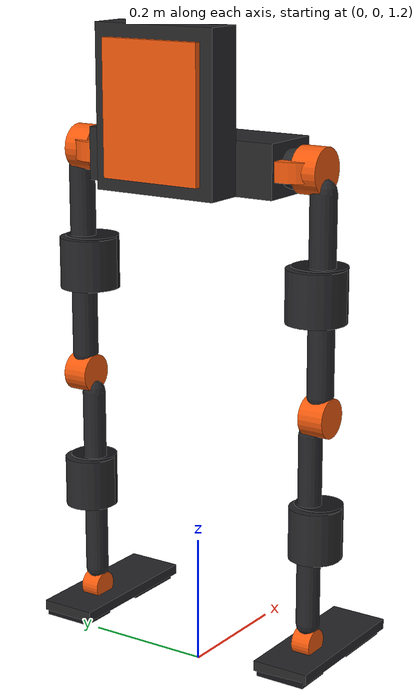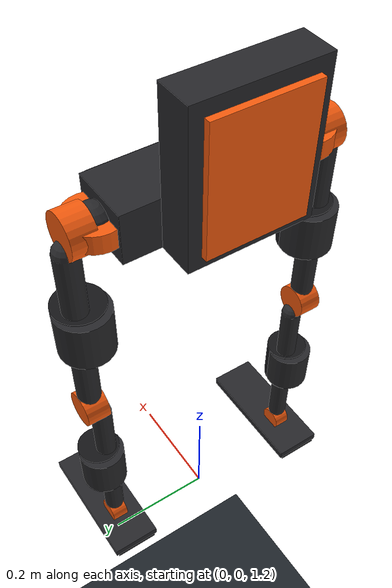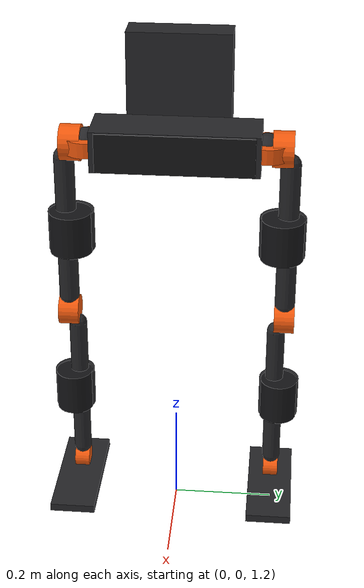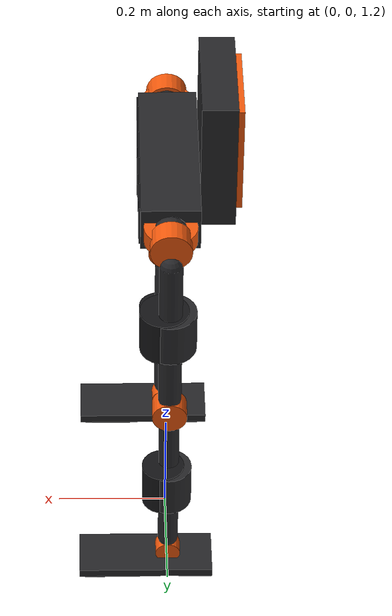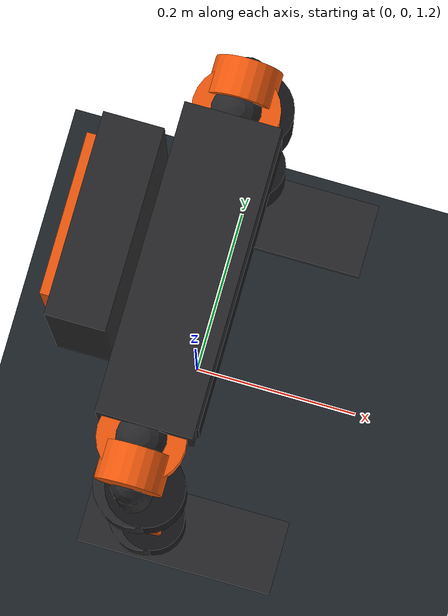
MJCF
<mujoco model="exoskeleton_scene">
  <include file="exoskeleton.xml"/>

  <option integrator="RK4" timestep="0.002" gravity="0 0 0"/>

  <!-- Setup the view and environment settings -->
  <statistic center="0 0 0.8" extent="1.5"/>

  <visual>
    <headlight diffuse="0.6 0.6 0.6" ambient="0.2 0.2 0.2" specular="0.2 0.2 0.2"/>
    <rgba haze="0.15 0.25 0.35 1"/>
    <global azimuth="140" elevation="-20"/>
  </visual>

  <!-- Skybox and Ground textures/materials -->
  <asset>
    <texture type="skybox" builtin="gradient" rgb1="0.1 0.15 0.25" rgb2="0 0 0" width="512" height="3072"/>
    <texture type="2d" name="groundplane" builtin="checker" mark="edge" rgb1="0.15 0.18 0.2" rgb2="0.08 0.1 0.12"
      markrgb="0.4 0.4 0.4" width="300" height="300"/>
    <material name="groundplane" texture="groundplane" texuniform="true" texrepeat="5 5" reflectance="0.15"/>
  </asset>

  <worldbody>
    <!-- Direct lighting -->
    <light pos="0 0 3.0" dir="0 0 -1" directional="true" castshadow="true"/>
    <light pos="1.5 1.5 3.0" dir="-0.5 -0.5 -1" directional="true" castshadow="true"/>

    <!-- Floor plane -->
    <geom name="floor" size="0 0 0.05" type="plane" material="groundplane"/>
  </worldbody>

  <!-- Toggleable Weld Constraint to hold the pelvis in mid-air -->
  <equality>
    <weld name="pelvis_weld" body1="pelvis" relpose="0 0 2.0 1 0 0 0" active="true"/>
  </equality>
</mujoco>

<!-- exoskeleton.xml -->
<mujoco model="lower_limb_exoskeleton">
  <compiler angle="radian" autolimits="true"/>

  <default>
    <default class="exoskeleton">
      <joint damping="10.0" armature="0.05" type="hinge"/>
      <geom contype="1" conaffinity="1" condim="3"/>
      <!-- Default position actuator settings -->
      <position kp="250" forcerange="-150 150"/>
    </default>
  </default>

  <!-- Sleek and modern color scheme -->
  <asset>
    <!-- Carbon fiber / dark structure -->
    <material name="carbon_fiber" rgba="0.15 0.15 0.16 1.0" specular="0.8" shininess="0.6"/>
    <!-- Anodized orange details for joints -->
    <material name="orange_anodized" rgba="0.95 0.35 0.05 1.0" specular="0.9" shininess="0.8"/>
    <!-- Matte black padding/cushion -->
    <material name="pad_matte" rgba="0.08 0.08 0.09 1.0" specular="0.1" shininess="0.1"/>
    <!-- Semi-transparent guards -->
    <material name="guard_translucent" rgba="0.2 0.6 0.9 0.4" specular="0.5" shininess="0.5"/>
  </asset>

  <worldbody>
    <!-- Pelvis / Waist Band -->
    <body name="pelvis" pos="0 0 2.0" childclass="exoskeleton">
      <freejoint name="pelvis_free"/>

      <!-- Central waist frame -->
      <geom name="pelvis_back" type="box" size="0.05 0.16 0.04" material="carbon_fiber"/>
      <!-- Back support battery pack / controller housing (aesthetic) -->
      <geom name="pelvis_pack" type="box" size="0.03 0.10 0.12" pos="-0.08 0 0.08" material="carbon_fiber"/>
      <geom name="pelvis_pack_accent" type="box" size="0.005 0.08 0.10" pos="-0.116 0 0.08" material="orange_anodized"/>

      <!-- Pelvis pads / cushions -->
      <geom name="pelvis_pad" type="box" size="0.048 0.15 0.038" pos="0.005 0 0" material="pad_matte"/>

      <!-- ==================== LEFT LEG ==================== -->
      <!-- Left Hip Mount -->
      <body name="left_hip_mount" pos="0 0.17 0">
        <geom name="left_hip_mount_geom" type="cylinder" size="0.045 0.015" quat="1 0 0 0" material="orange_anodized"/>

        <!-- Left Hip Yaw (Z-axis rotation) -->
        <body name="left_hip_yaw_link" pos="0 0 0">
          <joint name="left_hip_yaw" axis="0 0 1" range="-0.4 0.4"/>
          <geom name="left_hip_yaw_geom" type="sphere" size="0.03" material="carbon_fiber"/>

          <!-- Left Hip Roll (X-axis rotation) -->
          <body name="left_hip_roll_link" pos="0 0 0">
            <joint name="left_hip_roll" axis="1 0 0" range="-0.3 0.4"/>
            <geom name="left_hip_roll_geom" type="cylinder" size="0.025 0.03" quat="0.7071068 0.7071068 0 0" material="orange_anodized"/>

            <!-- Left Hip Pitch (Y-axis rotation, flexion/extension) -->
            <body name="left_thigh" pos="0 0.03 0">
              <joint name="left_hip_pitch" axis="0 1 0" range="-0.5 1.4"/>

              <!-- Thigh structures -->
              <geom name="left_thigh_upper" type="cylinder" size="0.035 0.02" quat="0.7071068 0.7071068 0 0" material="orange_anodized"/>
              <geom name="left_thigh_strut" type="capsule" size="0.02 0.15" pos="0 0.015 -0.18" quat="1 0 0 0" material="carbon_fiber"/>

              <!-- Thigh cuffs & pads (mounting to human leg) -->
              <geom name="left_thigh_cuff" type="cylinder" size="0.045 0.04" pos="0 0.005 -0.18" quat="1 0 0 0" material="carbon_fiber"/>
              <geom name="left_thigh_pad" type="cylinder" size="0.042 0.042" pos="0.01 0.005 -0.18" quat="1 0 0 0" material="pad_matte"/>

              <!-- Left Knee Pitch (Y-axis rotation, flexion) -->
              <body name="left_shank" pos="0 0.015 -0.36">
                <joint name="left_knee_pitch" axis="0 -1 0" range="0.0 2.1"/>

                <!-- Knee structure -->
                <geom name="left_knee_joint_geom" type="cylinder" size="0.03 0.02" quat="0.7071068 0.7071068 0 0" material="orange_anodized"/>
                <geom name="left_shank_strut" type="capsule" size="0.018 0.15" pos="0 -0.015 -0.18" quat="1 0 0 0" material="carbon_fiber"/>

                <!-- Shank cuffs & pads -->
                <geom name="left_shank_cuff" type="cylinder" size="0.04 0.04" pos="0 -0.005 -0.18" quat="1 0 0 0" material="carbon_fiber"/>
                <geom name="left_shank_pad" type="cylinder" size="0.037 0.042" pos="0.01 -0.005 -0.18" quat="1 0 0 0" material="pad_matte"/>

                <!-- Left Ankle Pitch (Y-axis rotation) -->
                <body name="left_foot" pos="0 -0.015 -0.36">
                  <joint name="left_ankle_pitch" axis="0 1 0" range="-0.6 0.5"/>

                  <!-- Ankle joint -->
                  <geom name="left_ankle_joint_geom" type="cylinder" size="0.022 0.015" quat="0.7071068 0.7071068 0 0" material="orange_anodized"/>

                  <!-- Foot plate -->
                  <geom name="left_foot_plate" type="box" size="0.12 0.045 0.008" pos="0.04 0 -0.02" material="carbon_fiber"/>
                  <!-- Heel/Toe contact sensors/geoms -->
                  <geom name="left_heel" type="box" size="0.03 0.04 0.005" pos="-0.05 0 -0.03" material="pad_matte" condim="6"/>
                  <geom name="left_toe" type="box" size="0.05 0.04 0.005" pos="0.1 0 -0.03" material="pad_matte" condim="6"/>
                </body>
              </body>
            </body>
          </body>
        </body>
      </body>

      <!-- ==================== RIGHT LEG ==================== -->
      <!-- Right Hip Mount -->
      <body name="right_hip_mount" pos="0 -0.17 0">
        <geom name="right_hip_mount_geom" type="cylinder" size="0.045 0.015" quat="1 0 0 0" material="orange_anodized"/>

        <!-- Right Hip Yaw (Z-axis rotation) -->
        <body name="right_hip_yaw_link" pos="0 0 0">
          <joint name="right_hip_yaw" axis="0 0 1" range="-0.4 0.4"/>
          <geom name="right_hip_yaw_geom" type="sphere" size="0.03" material="carbon_fiber"/>

          <!-- Right Hip Roll (X-axis rotation) -->
          <body name="right_hip_roll_link" pos="0 0 0">
            <joint name="right_hip_roll" axis="1 0 0" range="-0.4 0.3"/>
            <geom name="right_hip_roll_geom" type="cylinder" size="0.025 0.03" quat="0.7071068 0.7071068 0 0" material="orange_anodized"/>

            <!-- Right Hip Pitch (Y-axis rotation, flexion/extension) -->
            <body name="right_thigh" pos="0 -0.03 0">
              <joint name="right_hip_pitch" axis="0 1 0" range="-0.5 1.4"/>

              <!-- Thigh structures -->
              <geom name="right_thigh_upper" type="cylinder" size="0.035 0.02" quat="0.7071068 0.7071068 0 0" material="orange_anodized"/>
              <geom name="right_thigh_strut" type="capsule" size="0.02 0.15" pos="0 -0.015 -0.18" quat="1 0 0 0" material="carbon_fiber"/>

              <!-- Thigh cuffs & pads -->
              <geom name="right_thigh_cuff" type="cylinder" size="0.045 0.04" pos="0 -0.005 -0.18" quat="1 0 0 0" material="carbon_fiber"/>
              <geom name="right_thigh_pad" type="cylinder" size="0.042 0.042" pos="0.01 -0.005 -0.18" quat="1 0 0 0" material="pad_matte"/>

              <!-- Right Knee Pitch (Y-axis rotation, flexion) -->
              <body name="right_shank" pos="0 -0.015 -0.36">
                <joint name="right_knee_pitch" axis="0 -1 0" range="0.0 2.1"/>

                <!-- Knee structure -->
                <geom name="right_knee_joint_geom" type="cylinder" size="0.03 0.02" quat="0.7071068 0.7071068 0 0" material="orange_anodized"/>
                <geom name="right_shank_strut" type="capsule" size="0.018 0.15" pos="0 0.015 -0.18" quat="1 0 0 0" material="carbon_fiber"/>

                <!-- Shank cuffs & pads -->
                <geom name="right_shank_cuff" type="cylinder" size="0.04 0.04" pos="0 0.005 -0.18" quat="1 0 0 0" material="carbon_fiber"/>
                <geom name="right_shank_pad" type="cylinder" size="0.037 0.042" pos="0.01 0.005 -0.18" quat="1 0 0 0" material="pad_matte"/>

                <!-- Right Ankle Pitch (Y-axis rotation) -->
                <body name="right_foot" pos="0 0.015 -0.36">
                  <joint name="right_ankle_pitch" axis="0 1 0" range="-0.6 0.5"/>

                  <!-- Ankle joint -->
                  <geom name="right_ankle_joint_geom" type="cylinder" size="0.022 0.015" quat="0.7071068 0.7071068 0 0" material="orange_anodized"/>

                  <!-- Foot plate -->
                  <geom name="right_foot_plate" type="box" size="0.12 0.045 0.008" pos="0.04 0 -0.02" material="carbon_fiber"/>
                  <!-- Heel/Toe contact sensors/geoms -->
                  <geom name="right_heel" type="box" size="0.03 0.04 0.005" pos="-0.05 0 -0.03" material="pad_matte" condim="6"/>
                  <geom name="right_toe" type="box" size="0.05 0.04 0.005" pos="0.1 0 -0.03" material="pad_matte" condim="6"/>
                </body>
              </body>
            </body>
          </body>
        </body>
      </body>
    </body>
  </worldbody>

  <!-- Actuators for the exoskeleton joints (PD control) -->
  <actuator>
    <!-- Left Leg Actuators -->
    <position name="left_hip_yaw_act" joint="left_hip_yaw" ctrlrange="-0.4 0.4" kp="150" class="exoskeleton"/>
    <position name="left_hip_roll_act" joint="left_hip_roll" ctrlrange="-0.3 0.4" kp="150" class="exoskeleton"/>
    <position name="left_hip_pitch_act" joint="left_hip_pitch" ctrlrange="-0.5 1.4" kp="300" class="exoskeleton"/>
    <position name="left_knee_pitch_act" joint="left_knee_pitch" ctrlrange="0.0 2.1" kp="300" class="exoskeleton"/>
    <position name="left_ankle_pitch_act" joint="left_ankle_pitch" ctrlrange="-0.6 0.5" kp="150" class="exoskeleton"/>

    <!-- Right Leg Actuators -->
    <position name="right_hip_yaw_act" joint="right_hip_yaw" ctrlrange="-0.4 0.4" kp="150" class="exoskeleton"/>
    <position name="right_hip_roll_act" joint="right_hip_roll" ctrlrange="-0.4 0.3" kp="150" class="exoskeleton"/>
    <position name="right_hip_pitch_act" joint="right_hip_pitch" ctrlrange="-0.5 1.4" kp="300" class="exoskeleton"/>
    <position name="right_knee_pitch_act" joint="right_knee_pitch" ctrlrange="0.0 2.1" kp="300" class="exoskeleton"/>
    <position name="right_ankle_pitch_act" joint="right_ankle_pitch" ctrlrange="-0.6 0.5" kp="150" class="exoskeleton"/>
  </actuator>
</mujoco>
